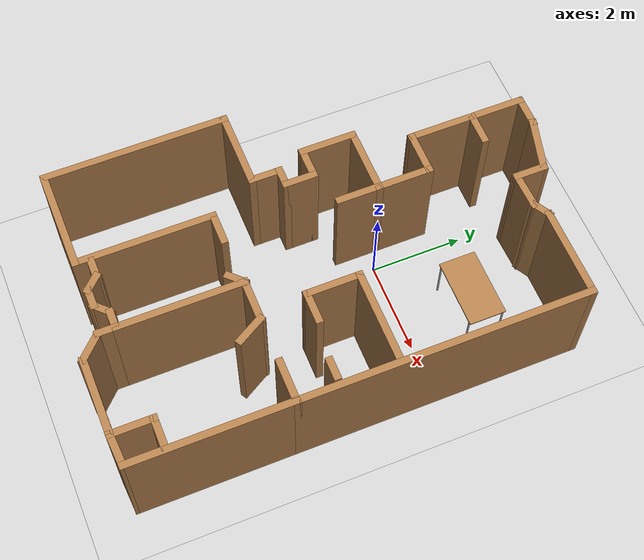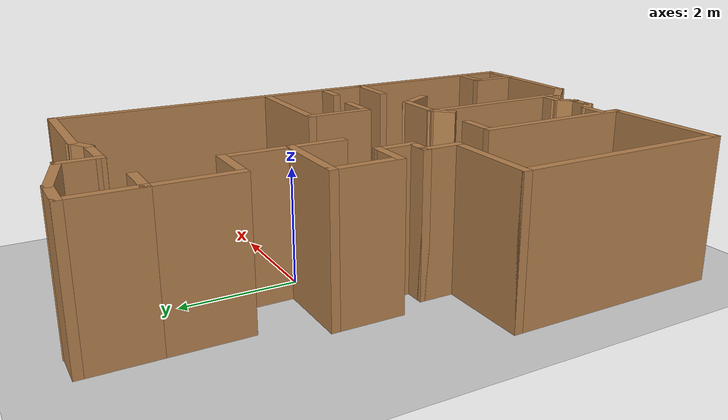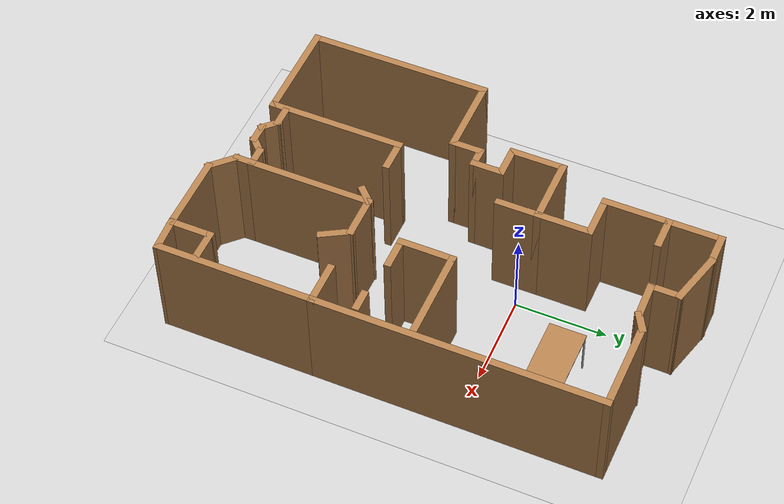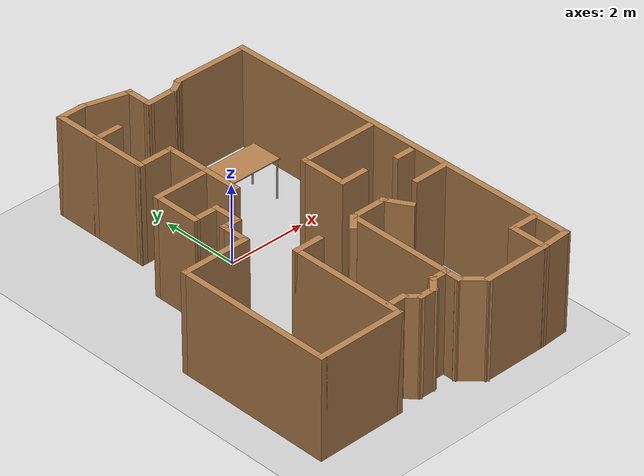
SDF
<sdf version="1.6">
 <world name="default">
  <model name="ground_plane">
   <static>1</static>
   <link name="link">
    <collision name="collision">
     <geometry><plane><normal>0 0 1</normal><size>100 100</size></plane></geometry>
     <surface>
      <contact><collide_bitmask>65535</collide_bitmask></contact>
      <friction><ode><mu>100</mu><mu2>50</mu2></ode></friction>
     </surface>
    </collision>
    <visual name="visual">
     <cast_shadows>0</cast_shadows>
     <geometry><plane><normal>0 0 1</normal><size>100 100</size></plane></geometry>
     <material>
      <script><uri>file://media/materials/scripts/gazebo.material</uri><name>Gazebo/Grey</name></script>
     </material>
    </visual>
   </link>
  </model>
  <model name="map_33">
   <pose>0.011144 -1.33379 0 0 -0 0</pose>
   <link name="Wall_0">
    <collision name="Wall_0_Collision">
     <geometry><box><size>0.75 0.15 2.5</size></box></geometry>
     <pose>0 0 1.25 0 -0 0</pose>
    </collision>
    <visual name="Wall_0_Visual">
     <pose>0 0 1.25 0 -0 0</pose>
     <geometry><box><size>0.75 0.15 2.5</size></box></geometry>
     <material>
      <script><uri>file://media/materials/scripts/gazebo.material</uri><name>Gazebo/Wood</name></script>
      <ambient>1 1 1 1</ambient>
     </material>
     <meta><layer>0</layer></meta>
    </visual>
    <pose>0.311947 4.50852 0 0 -0 1.5708</pose>
   </link>
   <link name="Wall_1">
    <collision name="Wall_1_Collision">
     <geometry><box><size>1.25 0.15 2.5</size></box></geometry>
     <pose>0 0 1.25 0 -0 0</pose>
    </collision>
    <visual name="Wall_1_Visual">
     <pose>0 0 1.25 0 -0 0</pose>
     <geometry><box><size>1.25 0.15 2.5</size></box></geometry>
     <material>
      <script><uri>file://media/materials/scripts/gazebo.material</uri><name>Gazebo/Wood</name></script>
      <ambient>1 1 1 1</ambient>
     </material>
     <meta><layer>0</layer></meta>
    </visual>
    <pose>-0.219312 4.95087 0 0 -0 2.87979</pose>
   </link>
   <link name="Wall_14">
    <collision name="Wall_14_Collision">
     <geometry><box><size>1.5 0.15 2.5</size></box></geometry>
     <pose>0 0 1.25 0 -0 0</pose>
    </collision>
    <visual name="Wall_14_Visual">
     <pose>0 0 1.25 0 -0 0</pose>
     <geometry><box><size>1.5 0.15 2.5</size></box></geometry>
     <material>
      <script><uri>file://media/materials/scripts/gazebo.material</uri><name>Gazebo/Wood</name></script>
      <ambient>1 1 1 1</ambient>
     </material>
     <meta><layer>0</layer></meta>
    </visual>
    <pose>-1.17557 1.54322 0 0 -0 3.14159</pose>
   </link>
   <link name="Wall_15">
    <collision name="Wall_15_Collision">
     <geometry><box><size>1.25 0.15 2.5</size></box></geometry>
     <pose>0 0 1.25 0 -0 0</pose>
    </collision>
    <visual name="Wall_15_Visual">
     <pose>0 0 1.25 0 -0 0</pose>
     <geometry><box><size>1.25 0.15 2.5</size></box></geometry>
     <material>
      <script><uri>file://media/materials/scripts/gazebo.material</uri><name>Gazebo/Wood</name></script>
      <ambient>1 1 1 1</ambient>
     </material>
     <meta><layer>0</layer></meta>
    </visual>
    <pose>-1.85057 0.993218 0 0 -0 -1.5708</pose>
   </link>
   <link name="Wall_16">
    <collision name="Wall_16_Collision">
     <geometry><box><size>0.75 0.15 2.5</size></box></geometry>
     <pose>0 0 1.25 0 -0 0</pose>
    </collision>
    <visual name="Wall_16_Visual">
     <pose>0 0 1.25 0 -0 0</pose>
     <geometry><box><size>0.75 0.15 2.5</size></box></geometry>
     <material>
      <script><uri>file://media/materials/scripts/gazebo.material</uri><name>Gazebo/Wood</name></script>
      <ambient>1 1 1 1</ambient>
     </material>
     <meta><layer>0</layer></meta>
    </visual>
    <pose>-1.55057 0.443218 0 0 -0 0</pose>
   </link>
   <link name="Wall_17">
    <collision name="Wall_17_Collision">
     <geometry><box><size>0.75 0.15 2.5</size></box></geometry>
     <pose>0 0 1.25 0 -0 0</pose>
    </collision>
    <visual name="Wall_17_Visual">
     <pose>0 0 1.25 0 -0 0</pose>
     <geometry><box><size>0.75 0.15 2.5</size></box></geometry>
     <material>
      <script><uri>file://media/materials/scripts/gazebo.material</uri><name>Gazebo/Wood</name></script>
      <ambient>1 1 1 1</ambient>
     </material>
     <meta><layer>0</layer></meta>
    </visual>
    <pose>-1.25057 0.143218 0 0 -0 -1.5708</pose>
   </link>
   <link name="Wall_18">
    <collision name="Wall_18_Collision">
     <geometry><box><size>0.5 0.15 2.5</size></box></geometry>
     <pose>0 0 1.25 0 -0 0</pose>
    </collision>
    <visual name="Wall_18_Visual">
     <pose>0 0 1.25 0 -0 0</pose>
     <geometry><box><size>0.5 0.15 2.5</size></box></geometry>
     <material>
      <script><uri>file://media/materials/scripts/gazebo.material</uri><name>Gazebo/Wood</name></script>
      <ambient>1 1 1 1</ambient>
     </material>
     <meta><layer>0</layer></meta>
    </visual>
    <pose>-1.42557 -0.156782 0 0 -0 3.14159</pose>
   </link>
   <link name="Wall_19">
    <collision name="Wall_19_Collision">
     <geometry><box><size>0.75 0.15 2.5</size></box></geometry>
     <pose>0 0 1.25 0 -0 0</pose>
    </collision>
    <visual name="Wall_19_Visual">
     <pose>0 0 1.25 0 -0 0</pose>
     <geometry><box><size>0.75 0.15 2.5</size></box></geometry>
     <material>
      <script><uri>file://media/materials/scripts/gazebo.material</uri><name>Gazebo/Wood</name></script>
      <ambient>1 1 1 1</ambient>
     </material>
     <meta><layer>0</layer></meta>
    </visual>
    <pose>-1.60057 -0.456782 0 0 -0 -1.5708</pose>
   </link>
   <link name="Wall_2">
    <collision name="Wall_2_Collision">
     <geometry><box><size>0.75 0.15 2.5</size></box></geometry>
     <pose>0 0 1.25 0 -0 0</pose>
    </collision>
    <visual name="Wall_2_Visual">
     <pose>0 0 1.25 0 -0 0</pose>
     <geometry><box><size>0.75 0.15 2.5</size></box></geometry>
     <material>
      <script><uri>file://media/materials/scripts/gazebo.material</uri><name>Gazebo/Wood</name></script>
      <ambient>1 1 1 1</ambient>
     </material>
     <meta><layer>0</layer></meta>
    </visual>
    <pose>-1.05057 5.09322 0 0 -0 3.14159</pose>
   </link>
   <link name="Wall_20">
    <collision name="Wall_20_Collision">
     <geometry><box><size>1.75 0.15 2.5</size></box></geometry>
     <pose>0 0 1.25 0 -0 0</pose>
    </collision>
    <visual name="Wall_20_Visual">
     <pose>0 0 1.25 0 -0 0</pose>
     <geometry><box><size>1.75 0.15 2.5</size></box></geometry>
     <material>
      <script><uri>file://media/materials/scripts/gazebo.material</uri><name>Gazebo/Wood</name></script>
      <ambient>1 1 1 1</ambient>
     </material>
     <meta><layer>0</layer></meta>
    </visual>
    <pose>-2.40057 -0.756782 0 0 -0 3.14159</pose>
   </link>
   <link name="Wall_21">
    <collision name="Wall_21_Collision">
     <geometry><box><size>4 0.15 2.5</size></box></geometry>
     <pose>0 0 1.25 0 -0 0</pose>
    </collision>
    <visual name="Wall_21_Visual">
     <pose>0 0 1.25 0 -0 0</pose>
     <geometry><box><size>4 0.15 2.5</size></box></geometry>
     <material>
      <script><uri>file://media/materials/scripts/gazebo.material</uri><name>Gazebo/Wood</name></script>
      <ambient>1 1 1 1</ambient>
     </material>
     <meta><layer>0</layer></meta>
    </visual>
    <pose>-3.20057 -2.68178 0 0 -0 -1.5708</pose>
   </link>
   <link name="Wall_22">
    <collision name="Wall_22_Collision">
     <geometry><box><size>2.25 0.15 2.5</size></box></geometry>
     <pose>0 0 1.25 0 -0 0</pose>
    </collision>
    <visual name="Wall_22_Visual">
     <pose>0 0 1.25 0 -0 0</pose>
     <geometry><box><size>2.25 0.15 2.5</size></box></geometry>
     <material>
      <script><uri>file://media/materials/scripts/gazebo.material</uri><name>Gazebo/Wood</name></script>
      <ambient>1 1 1 1</ambient>
     </material>
     <meta><layer>0</layer></meta>
    </visual>
    <pose>-2.15057 -4.60678 0 0 -0 0</pose>
   </link>
   <link name="Wall_23">
    <collision name="Wall_23_Collision">
     <geometry><box><size>3 0.15 2.5</size></box></geometry>
     <pose>0 0 1.25 0 -0 0</pose>
    </collision>
    <visual name="Wall_23_Visual">
     <pose>0 0 1.25 0 -0 0</pose>
     <geometry><box><size>3 0.15 2.5</size></box></geometry>
     <material>
      <script><uri>file://media/materials/scripts/gazebo.material</uri><name>Gazebo/Wood</name></script>
      <ambient>1 1 1 1</ambient>
     </material>
     <meta><layer>0</layer></meta>
    </visual>
    <pose>-1.10057 -3.18178 0 0 -0 1.5708</pose>
   </link>
   <link name="Wall_24">
    <collision name="Wall_24_Collision">
     <geometry><box><size>0.75 0.15 2.5</size></box></geometry>
     <pose>0 0 1.25 0 -0 0</pose>
    </collision>
    <visual name="Wall_24_Visual">
     <pose>0 0 1.25 0 -0 0</pose>
     <geometry><box><size>0.75 0.15 2.5</size></box></geometry>
     <material>
      <script><uri>file://media/materials/scripts/gazebo.material</uri><name>Gazebo/Wood</name></script>
      <ambient>1 1 1 1</ambient>
     </material>
     <meta><layer>0</layer></meta>
    </visual>
    <pose>-0.800572 -1.75678 0 0 -0 0</pose>
   </link>
   <link name="Wall_26">
    <collision name="Wall_26_Collision">
     <geometry><box><size>0.5 0.15 2.5</size></box></geometry>
     <pose>0 0 1.25 0 -0 0</pose>
    </collision>
    <visual name="Wall_26_Visual">
     <pose>0 0 1.25 0 -0 0</pose>
     <geometry><box><size>0.5 0.15 2.5</size></box></geometry>
     <material>
      <script><uri>file://media/materials/scripts/gazebo.material</uri><name>Gazebo/Wood</name></script>
      <ambient>1 1 1 1</ambient>
     </material>
     <meta><layer>0</layer></meta>
    </visual>
    <pose>-0.849846 -4.30474 0 0 -0 0</pose>
   </link>
   <link name="Wall_27">
    <collision name="Wall_27_Collision">
     <geometry><box><size>0.5 0.15 2.5</size></box></geometry>
     <pose>0 0 1.25 0 -0 0</pose>
    </collision>
    <visual name="Wall_27_Visual">
     <pose>0 0 1.25 0 -0 0</pose>
     <geometry><box><size>0.5 0.15 2.5</size></box></geometry>
     <material>
      <script><uri>file://media/materials/scripts/gazebo.material</uri><name>Gazebo/Wood</name></script>
      <ambient>1 1 1 1</ambient>
     </material>
     <meta><layer>0</layer></meta>
    </visual>
    <pose>-0.551102 -4.42849 0 0 -0 -0.785398</pose>
   </link>
   <link name="Wall_28">
    <collision name="Wall_28_Collision">
     <geometry><box><size>0.5 0.15 2.5</size></box></geometry>
     <pose>0 0 1.25 0 -0 0</pose>
    </collision>
    <visual name="Wall_28_Visual">
     <pose>0 0 1.25 0 -0 0</pose>
     <geometry><box><size>0.5 0.15 2.5</size></box></geometry>
     <material>
      <script><uri>file://media/materials/scripts/gazebo.material</uri><name>Gazebo/Wood</name></script>
      <ambient>1 1 1 1</ambient>
     </material>
     <meta><layer>0</layer></meta>
    </visual>
    <pose>-0.252359 -4.55223 0 0 -0 0</pose>
   </link>
   <link name="Wall_29">
    <collision name="Wall_29_Collision">
     <geometry><box><size>0.5 0.15 2.5</size></box></geometry>
     <pose>0 0 1.25 0 -0 0</pose>
    </collision>
    <visual name="Wall_29_Visual">
     <pose>0 0 1.25 0 -0 0</pose>
     <geometry><box><size>0.5 0.15 2.5</size></box></geometry>
     <material>
      <script><uri>file://media/materials/scripts/gazebo.material</uri><name>Gazebo/Wood</name></script>
      <ambient>1 1 1 1</ambient>
     </material>
     <meta><layer>0</layer></meta>
    </visual>
    <pose>0.046385 -4.42849 0 0 -0 0.785398</pose>
   </link>
   <link name="Wall_3">
    <collision name="Wall_3_Collision">
     <geometry><box><size>1.25 0.15 2.5</size></box></geometry>
     <pose>0 0 1.25 0 -0 0</pose>
    </collision>
    <visual name="Wall_3_Visual">
     <pose>0 0 1.25 0 -0 0</pose>
     <geometry><box><size>1.25 0.15 2.5</size></box></geometry>
     <material>
      <script><uri>file://media/materials/scripts/gazebo.material</uri><name>Gazebo/Wood</name></script>
      <ambient>1 1 1 1</ambient>
     </material>
     <meta><layer>0</layer></meta>
    </visual>
    <pose>-1.35057 4.54322 0 0 -0 -1.5708</pose>
   </link>
   <link name="Wall_30">
    <collision name="Wall_30_Collision">
     <geometry><box><size>0.5 0.15 2.5</size></box></geometry>
     <pose>0 0 1.25 0 -0 0</pose>
    </collision>
    <visual name="Wall_30_Visual">
     <pose>0 0 1.25 0 -0 0</pose>
     <geometry><box><size>0.5 0.15 2.5</size></box></geometry>
     <material>
      <script><uri>file://media/materials/scripts/gazebo.material</uri><name>Gazebo/Wood</name></script>
      <ambient>1 1 1 1</ambient>
     </material>
     <meta><layer>0</layer></meta>
    </visual>
    <pose>0.345129 -4.30474 0 0 -0 0</pose>
   </link>
   <link name="Wall_31">
    <collision name="Wall_31_Collision">
     <geometry><box><size>2.75 0.15 2.5</size></box></geometry>
     <pose>0 0 1.25 0 -0 0</pose>
    </collision>
    <visual name="Wall_31_Visual">
     <pose>0 0 1.25 0 -0 0</pose>
     <geometry><box><size>2.75 0.15 2.5</size></box></geometry>
     <material>
      <script><uri>file://media/materials/scripts/gazebo.material</uri><name>Gazebo/Wood</name></script>
      <ambient>1 1 1 1</ambient>
     </material>
     <meta><layer>0</layer></meta>
    </visual>
    <pose>0.520129 -3.00474 0 0 -0 1.5708</pose>
   </link>
   <link name="Wall_32">
    <collision name="Wall_32_Collision">
     <geometry><box><size>1 0.15 2.5</size></box></geometry>
     <pose>0 0 1.25 0 -0 0</pose>
    </collision>
    <visual name="Wall_32_Visual">
     <pose>0 0 1.25 0 -0 0</pose>
     <geometry><box><size>1 0.15 2.5</size></box></geometry>
     <material>
      <script><uri>file://media/materials/scripts/gazebo.material</uri><name>Gazebo/Wood</name></script>
      <ambient>1 1 1 1</ambient>
     </material>
     <meta><layer>0</layer></meta>
    </visual>
    <pose>0.945129 -1.70474 0 0 -0 0</pose>
   </link>
   <link name="Wall_34">
    <collision name="Wall_34_Collision">
     <geometry><box><size>0.5 0.15 2.5</size></box></geometry>
     <pose>0 0 1.25 0 -0 0</pose>
    </collision>
    <visual name="Wall_34_Visual">
     <pose>0 0 1.25 0 -0 0</pose>
     <geometry><box><size>0.5 0.15 2.5</size></box></geometry>
     <material>
      <script><uri>file://media/materials/scripts/gazebo.material</uri><name>Gazebo/Wood</name></script>
      <ambient>1 1 1 1</ambient>
     </material>
     <meta><layer>0</layer></meta>
    </visual>
    <pose>0.520129 -4.47974 0 0 -0 -1.5708</pose>
   </link>
   <link name="Wall_35">
    <collision name="Wall_35_Collision">
     <geometry><box><size>0.75 0.15 2.5</size></box></geometry>
     <pose>0 0 1.25 0 -0 0</pose>
    </collision>
    <visual name="Wall_35_Visual">
     <pose>0 0 1.25 0 -0 0</pose>
     <geometry><box><size>0.75 0.15 2.5</size></box></geometry>
     <material>
      <script><uri>file://media/materials/scripts/gazebo.material</uri><name>Gazebo/Wood</name></script>
      <ambient>1 1 1 1</ambient>
     </material>
     <meta><layer>0</layer></meta>
    </visual>
    <pose>0.732261 -4.86688 0 0 -0 -0.785398</pose>
   </link>
   <link name="Wall_36">
    <collision name="Wall_36_Collision">
     <geometry><box><size>1.75 0.15 2.5</size></box></geometry>
     <pose>0 0 1.25 0 -0 0</pose>
    </collision>
    <visual name="Wall_36_Visual">
     <pose>0 0 1.25 0 -0 0</pose>
     <geometry><box><size>1.75 0.15 2.5</size></box></geometry>
     <material>
      <script><uri>file://media/materials/scripts/gazebo.material</uri><name>Gazebo/Wood</name></script>
      <ambient>1 1 1 1</ambient>
     </material>
     <meta><layer>0</layer></meta>
    </visual>
    <pose>1.74439 -5.07901 0 0 -0 0</pose>
   </link>
   <link name="Wall_37">
    <collision name="Wall_37_Collision">
     <geometry><box><size>1 0.15 2.5</size></box></geometry>
     <pose>0 0 1.25 0 -0 0</pose>
    </collision>
    <visual name="Wall_37_Visual">
     <pose>0 0 1.25 0 -0 0</pose>
     <geometry><box><size>1 0.15 2.5</size></box></geometry>
     <material>
      <script><uri>file://media/materials/scripts/gazebo.material</uri><name>Gazebo/Wood</name></script>
      <ambient>1 1 1 1</ambient>
     </material>
     <meta><layer>0</layer></meta>
    </visual>
    <pose>2.54439 -4.65401 0 0 -0 1.5708</pose>
   </link>
   <link name="Wall_4">
    <collision name="Wall_4_Collision">
     <geometry><box><size>0.75 0.15 2.5</size></box></geometry>
     <pose>0 0 1.25 0 -0 0</pose>
    </collision>
    <visual name="Wall_4_Visual">
     <pose>0 0 1.25 0 -0 0</pose>
     <geometry><box><size>0.75 0.15 2.5</size></box></geometry>
     <material>
      <script><uri>file://media/materials/scripts/gazebo.material</uri><name>Gazebo/Wood</name></script>
      <ambient>1 1 1 1</ambient>
     </material>
     <meta><layer>0</layer></meta>
    </visual>
    <pose>-1.05057 3.99322 0 0 -0 0</pose>
   </link>
   <link name="Wall_40">
    <collision name="Wall_40_Collision">
     <geometry><box><size>0.75 0.15 2.5</size></box></geometry>
     <pose>0 0 1.25 0 -0 0</pose>
    </collision>
    <visual name="Wall_40_Visual">
     <pose>0 0 1.25 0 -0 0</pose>
     <geometry><box><size>0.75 0.15 2.5</size></box></geometry>
     <material>
      <script><uri>file://media/materials/scripts/gazebo.material</uri><name>Gazebo/Wood</name></script>
      <ambient>1 1 1 1</ambient>
     </material>
     <meta><layer>0</layer></meta>
    </visual>
    <pose>2.84439 -4.22901 0 0 -0 0</pose>
   </link>
   <link name="Wall_42">
    <collision name="Wall_42_Collision">
     <geometry><box><size>3.5 0.15 2.5</size></box></geometry>
     <pose>0 0 1.25 0 -0 0</pose>
    </collision>
    <visual name="Wall_42_Visual">
     <pose>0 0 1.25 0 -0 0</pose>
     <geometry><box><size>3.5 0.15 2.5</size></box></geometry>
     <material>
      <script><uri>file://media/materials/scripts/gazebo.material</uri><name>Gazebo/Wood</name></script>
      <ambient>1 1 1 1</ambient>
     </material>
     <meta><layer>0</layer></meta>
    </visual>
    <pose>3.1966 -3.3685 0 0 -0 1.5708</pose>
   </link>
   <link name="Wall_43">
    <collision name="Wall_43_Collision">
     <geometry><box><size>1 0.15 2.5</size></box></geometry>
     <pose>0 0 1.25 0 -0 0</pose>
    </collision>
    <visual name="Wall_43_Visual">
     <pose>0 0 1.25 0 -0 0</pose>
     <geometry><box><size>1 0.15 2.5</size></box></geometry>
     <material>
      <script><uri>file://media/materials/scripts/gazebo.material</uri><name>Gazebo/Wood</name></script>
      <ambient>1 1 1 1</ambient>
     </material>
     <meta><layer>0</layer></meta>
    </visual>
    <pose>2.77161 -1.6935 0 0 -0 3.14159</pose>
   </link>
   <link name="Wall_45">
    <collision name="Wall_45_Collision">
     <geometry><box><size>0.803179 0.15 2.5</size></box></geometry>
     <pose>0 0 1.25 0 -0 0</pose>
    </collision>
    <visual name="Wall_45_Visual">
     <pose>0 0 1.25 0 -0 0</pose>
     <geometry><box><size>0.803179 0.15 2.5</size></box></geometry>
     <material>
      <script><uri>file://media/materials/scripts/gazebo.material</uri><name>Gazebo/Wood</name></script>
      <ambient>1 1 1 1</ambient>
     </material>
     <meta><layer>0</layer></meta>
    </visual>
    <pose>2.8705 -5.06125 0 0 -0 -3.0872</pose>
   </link>
   <link name="Wall_47">
    <collision name="Wall_47_Collision">
     <geometry><box><size>6.25 0.15 2.5</size></box></geometry>
     <pose>0 0 1.25 0 -0 0</pose>
    </collision>
    <visual name="Wall_47_Visual">
     <pose>0 0 1.25 0 -0 0</pose>
     <geometry><box><size>6.25 0.15 2.5</size></box></geometry>
     <material>
      <script><uri>file://media/materials/scripts/gazebo.material</uri><name>Gazebo/Wood</name></script>
      <ambient>1 1 1 1</ambient>
     </material>
     <meta><layer>0</layer></meta>
    </visual>
    <pose>3.1966 1.3565 0 0 -0 1.5708</pose>
   </link>
   <link name="Wall_48">
    <collision name="Wall_48_Collision">
     <geometry><box><size>2 0.15 2.5</size></box></geometry>
     <pose>0 0 1.25 0 -0 0</pose>
    </collision>
    <visual name="Wall_48_Visual">
     <pose>0 0 1.25 0 -0 0</pose>
     <geometry><box><size>2 0.15 2.5</size></box></geometry>
     <material>
      <script><uri>file://media/materials/scripts/gazebo.material</uri><name>Gazebo/Wood</name></script>
      <ambient>1 1 1 1</ambient>
     </material>
     <meta><layer>0</layer></meta>
    </visual>
    <pose>2.27161 4.4065 0 0 -0 3.14159</pose>
   </link>
   <link name="Wall_49">
    <collision name="Wall_49_Collision">
     <geometry><box><size>0.5 0.15 2.5</size></box></geometry>
     <pose>0 0 1.25 0 -0 0</pose>
    </collision>
    <visual name="Wall_49_Visual">
     <pose>0 0 1.25 0 -0 0</pose>
     <geometry><box><size>0.5 0.15 2.5</size></box></geometry>
     <material>
      <script><uri>file://media/materials/scripts/gazebo.material</uri><name>Gazebo/Wood</name></script>
      <ambient>1 1 1 1</ambient>
     </material>
     <meta><layer>0</layer></meta>
    </visual>
    <pose>1.19505 4.319 0 0 -0 -2.61799</pose>
   </link>
   <link name="Wall_50">
    <collision name="Wall_50_Collision">
     <geometry><box><size>0.881911 0.15 2.5</size></box></geometry>
     <pose>0 0 1.25 0 -0 0</pose>
    </collision>
    <visual name="Wall_50_Visual">
     <pose>0 0 1.25 0 -0 0</pose>
     <geometry><box><size>0.881911 0.15 2.5</size></box></geometry>
     <material>
      <script><uri>file://media/materials/scripts/gazebo.material</uri><name>Gazebo/Wood</name></script>
      <ambient>1 1 1 1</ambient>
     </material>
     <meta><layer>0</layer></meta>
    </visual>
    <pose>0.677722 4.22001 0 0 -0 -3.11018</pose>
   </link>
   <link name="Wall_52">
    <collision name="Wall_52_Collision">
     <geometry><box><size>2 0.15 2.5</size></box></geometry>
     <pose>0 0 1.25 0 -0 0</pose>
    </collision>
    <visual name="Wall_52_Visual">
     <pose>0 0 1.25 0 -0 0</pose>
     <geometry><box><size>2 0.15 2.5</size></box></geometry>
     <material>
      <script><uri>file://media/materials/scripts/gazebo.material</uri><name>Gazebo/Wood</name></script>
      <ambient>1 1 1 1</ambient>
     </material>
     <meta><layer>0</layer></meta>
    </visual>
    <pose>2.13089 0.409211 0 0 -0 3.14159</pose>
   </link>
   <link name="Wall_53">
    <collision name="Wall_53_Collision">
     <geometry><box><size>1.25 0.15 2.5</size></box></geometry>
     <pose>0 0 1.25 0 -0 0</pose>
    </collision>
    <visual name="Wall_53_Visual">
     <pose>0 0 1.25 0 -0 0</pose>
     <geometry><box><size>1.25 0.15 2.5</size></box></geometry>
     <material>
      <script><uri>file://media/materials/scripts/gazebo.material</uri><name>Gazebo/Wood</name></script>
      <ambient>1 1 1 1</ambient>
     </material>
     <meta><layer>0</layer></meta>
    </visual>
    <pose>1.20589 -0.140789 0 0 -0 -1.5708</pose>
   </link>
   <link name="Wall_54">
    <collision name="Wall_54_Collision">
     <geometry><box><size>0.75 0.15 2.5</size></box></geometry>
     <pose>0 0 1.25 0 -0 0</pose>
    </collision>
    <visual name="Wall_54_Visual">
     <pose>0 0 1.25 0 -0 0</pose>
     <geometry><box><size>0.75 0.15 2.5</size></box></geometry>
     <material>
      <script><uri>file://media/materials/scripts/gazebo.material</uri><name>Gazebo/Wood</name></script>
      <ambient>1 1 1 1</ambient>
     </material>
     <meta><layer>0</layer></meta>
    </visual>
    <pose>1.50589 -0.690789 0 0 -0 0</pose>
   </link>
   <link name="Wall_56">
    <collision name="Wall_56_Collision">
     <geometry><box><size>0.5 0.15 2.5</size></box></geometry>
     <pose>0 0 1.25 0 -0 0</pose>
    </collision>
    <visual name="Wall_56_Visual">
     <pose>0 0 1.25 0 -0 0</pose>
     <geometry><box><size>0.5 0.15 2.5</size></box></geometry>
     <material>
      <script><uri>file://media/materials/scripts/gazebo.material</uri><name>Gazebo/Wood</name></script>
      <ambient>1 1 1 1</ambient>
     </material>
     <meta><layer>0</layer></meta>
    </visual>
    <pose>2.84571 -0.822046 0 0 -0 3.14159</pose>
   </link>
   <link name="Wall_58">
    <collision name="Wall_58_Collision">
     <geometry><box><size>0.75 0.15 2.5</size></box></geometry>
     <pose>0 0 1.25 0 -0 0</pose>
    </collision>
    <visual name="Wall_58_Visual">
     <pose>0 0 1.25 0 -0 0</pose>
     <geometry><box><size>0.75 0.15 2.5</size></box></geometry>
     <material>
      <script><uri>file://media/materials/scripts/gazebo.material</uri><name>Gazebo/Wood</name></script>
      <ambient>1 1 1 1</ambient>
     </material>
     <meta><layer>0</layer></meta>
    </visual>
    <pose>1.52013 -1.96455 0 0 -0 -1.0472</pose>
   </link>
   <link name="Wall_60">
    <collision name="Wall_60_Collision">
     <geometry><box><size>1 0.15 2.5</size></box></geometry>
     <pose>0 0 1.25 0 -0 0</pose>
    </collision>
    <visual name="Wall_60_Visual">
     <pose>0 0 1.25 0 -0 0</pose>
     <geometry><box><size>1 0.15 2.5</size></box></geometry>
     <material>
      <script><uri>file://media/materials/scripts/gazebo.material</uri><name>Gazebo/Wood</name></script>
      <ambient>1 1 1 1</ambient>
     </material>
     <meta><layer>0</layer></meta>
    </visual>
    <pose>-0.500572 1.11822 0 0 -0 -1.5708</pose>
   </link>
   <link name="Wall_62">
    <collision name="Wall_62_Collision">
     <geometry><box><size>0.5 0.15 2.5</size></box></geometry>
     <pose>0 0 1.25 0 -0 0</pose>
    </collision>
    <visual name="Wall_62_Visual">
     <pose>0 0 1.25 0 -0 0</pose>
     <geometry><box><size>0.5 0.15 2.5</size></box></geometry>
     <material>
      <script><uri>file://media/materials/scripts/gazebo.material</uri><name>Gazebo/Wood</name></script>
      <ambient>1 1 1 1</ambient>
     </material>
     <meta><layer>0</layer></meta>
    </visual>
    <pose>0.396385 -1.82849 0 0 -0 -2.35619</pose>
   </link>
   <link name="Wall_7">
    <collision name="Wall_7_Collision">
     <geometry><box><size>1.5 0.15 2.5</size></box></geometry>
     <pose>0 0 1.25 0 -0 0</pose>
    </collision>
    <visual name="Wall_7_Visual">
     <pose>0 0 1.25 0 -0 0</pose>
     <geometry><box><size>1.5 0.15 2.5</size></box></geometry>
     <material>
      <script><uri>file://media/materials/scripts/gazebo.material</uri><name>Gazebo/Wood</name></script>
      <ambient>1 1 1 1</ambient>
     </material>
     <meta><layer>0</layer></meta>
    </visual>
    <pose>-1.35057 3.31822 0 0 -0 -1.5708</pose>
   </link>
   <link name="Wall_8">
    <collision name="Wall_8_Collision">
     <geometry><box><size>1 0.15 2.5</size></box></geometry>
     <pose>0 0 1.25 0 -0 0</pose>
    </collision>
    <visual name="Wall_8_Visual">
     <pose>0 0 1.25 0 -0 0</pose>
     <geometry><box><size>1 0.15 2.5</size></box></geometry>
     <material>
      <script><uri>file://media/materials/scripts/gazebo.material</uri><name>Gazebo/Wood</name></script>
      <ambient>1 1 1 1</ambient>
     </material>
     <meta><layer>0</layer></meta>
    </visual>
    <pose>-0.925572 2.64322 0 0 -0 0</pose>
   </link>
   <link name="Wall_9">
    <collision name="Wall_9_Collision">
     <geometry><box><size>1.25 0.15 2.5</size></box></geometry>
     <pose>0 0 1.25 0 -0 0</pose>
    </collision>
    <visual name="Wall_9_Visual">
     <pose>0 0 1.25 0 -0 0</pose>
     <geometry><box><size>1.25 0.15 2.5</size></box></geometry>
     <material>
      <script><uri>file://media/materials/scripts/gazebo.material</uri><name>Gazebo/Wood</name></script>
      <ambient>1 1 1 1</ambient>
     </material>
     <meta><layer>0</layer></meta>
    </visual>
    <pose>-0.500572 2.09322 0 0 -0 -1.5708</pose>
   </link>
   <static>1</static>
  </model>
  <model name="table">
   <static>1</static>
   <link name="link">
    <collision name="surface">
     <pose>0 0 1 0 -0 0</pose>
     <geometry><box><size>1.5 0.8 0.03</size></box></geometry>
     <surface><friction><ode><mu>0.6</mu><mu2>0.6</mu2></ode></friction></surface>
    </collision>
    <visual name="visual1">
     <pose>0 0 1 0 -0 0</pose>
     <geometry><box><size>1.5 0.8 0.03</size></box></geometry>
     <material>
      <script><uri>file://media/materials/scripts/gazebo.material</uri><name>Gazebo/Wood</name></script>
     </material>
    </visual>
    <collision name="front_left_leg">
     <pose>0.68 0.38 0.5 0 -0 0</pose>
     <geometry><cylinder><radius>0.02</radius><length>1</length></cylinder></geometry>
    </collision>
    <visual name="front_left_leg">
     <pose>0.68 0.38 0.5 0 -0 0</pose>
     <geometry><cylinder><radius>0.02</radius><length>1</length></cylinder></geometry>
     <material>
      <script><uri>file://media/materials/scripts/gazebo.material</uri><name>Gazebo/Grey</name></script>
     </material>
    </visual>
    <collision name="front_right_leg">
     <pose>0.68 -0.38 0.5 0 -0 0</pose>
     <geometry><cylinder><radius>0.02</radius><length>1</length></cylinder></geometry>
    </collision>
    <visual name="front_right_leg">
     <pose>0.68 -0.38 0.5 0 -0 0</pose>
     <geometry><cylinder><radius>0.02</radius><length>1</length></cylinder></geometry>
     <material>
      <script><uri>file://media/materials/scripts/gazebo.material</uri><name>Gazebo/Grey</name></script>
     </material>
    </visual>
    <collision name="back_right_leg">
     <pose>-0.68 -0.38 0.5 0 -0 0</pose>
     <geometry><cylinder><radius>0.02</radius><length>1</length></cylinder></geometry>
    </collision>
    <visual name="back_right_leg">
     <pose>-0.68 -0.38 0.5 0 -0 0</pose>
     <geometry><cylinder><radius>0.02</radius><length>1</length></cylinder></geometry>
     <material>
      <script><uri>file://media/materials/scripts/gazebo.material</uri><name>Gazebo/Grey</name></script>
     </material>
    </visual>
    <collision name="back_left_leg">
     <pose>-0.68 0.38 0.5 0 -0 0</pose>
     <geometry><cylinder><radius>0.02</radius><length>1</length></cylinder></geometry>
    </collision>
    <visual name="back_left_leg">
     <pose>-0.68 0.38 0.5 0 -0 0</pose>
     <geometry><cylinder><radius>0.02</radius><length>1</length></cylinder></geometry>
     <material>
      <script><uri>file://media/materials/scripts/gazebo.material</uri><name>Gazebo/Grey</name></script>
     </material>
    </visual>
   </link>
   <pose>1.62672 1.44929 0 0 -0 0</pose>
  </model>
 </world>
</sdf>
